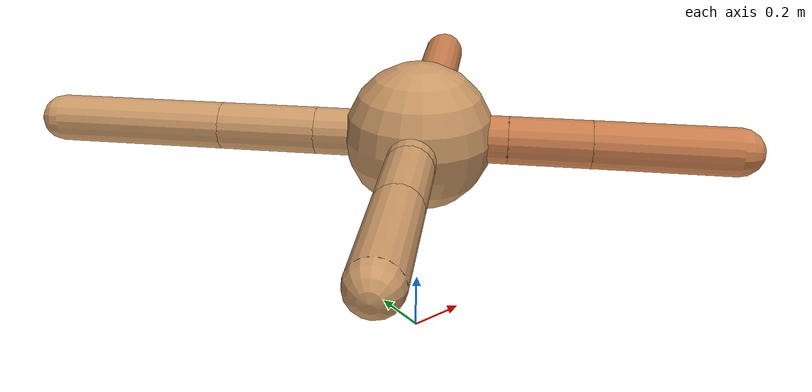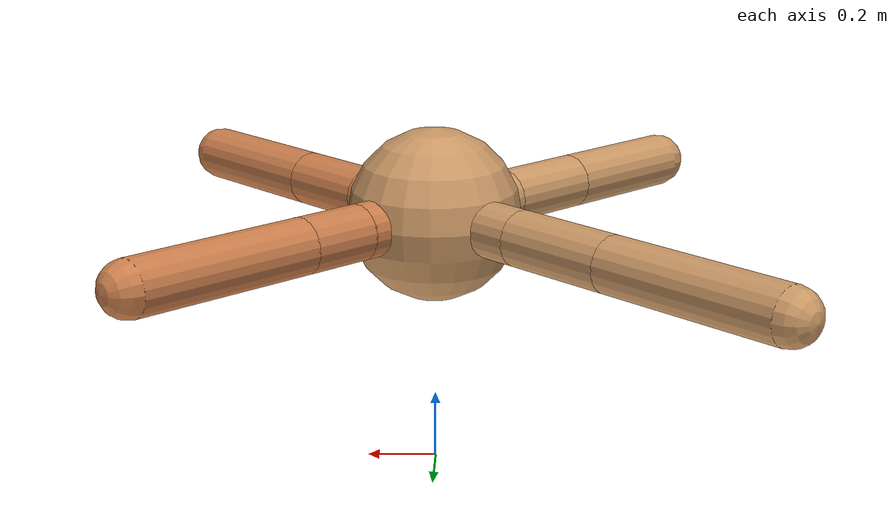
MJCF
<mujoco model="ant">
  <compiler angle="degree" coordinate="local" inertiafromgeom="true" />
  <option integrator="RK4" timestep="0.01" />
  <custom>
    <numeric data="0.0 0.0 0.55 1.0 0.0 0.0 0.0 0.0 1.0 0.0 -1.0 0.0 -1.0 0.0 1.0" name="init_qpos" />
  </custom>
  <default>
    <joint armature="1" damping="1" limited="true" />
    <geom conaffinity="0" condim="3" density="5.0" friction="1.5 0.1 0.1" margin="0.01" rgba="0.8 0.6 0.4 1" />
  </default>
  <worldbody>
    <body name="torso" pos="0 0 0.75">
      <geom name="torso_geom" pos="0 0 0" size="0.25" type="sphere" />

      <body name="front_left_leg" pos="0 0 0">
        <geom fromto="0.0 0.0 0.0 0.2000031320729979 0.2000031320729979 0.0" name="aux_1_geom" size="0.08" type="capsule" rgba=".8 .5 .3 1" />
        <body name="aux_1" pos="0.2000031320729979 0.2000031320729979 0.0">
          <joint axis="0 0 1" name="hip_1" pos="0.0 0.0 0.0" range="-40 40" type="hinge" />
          <geom fromto="0.0 0.0 0.0 0.14027428772741768 0.14027428772741768 0.0" name="left_leg_geom" size="0.08" type="capsule" rgba=".8 .5 .3 1" />
          <body pos="0.14027428772741768 0.14027428772741768 0.0" name="front_left_foot">
            <joint axis="-1 1 0" name="ankle_1" pos="0.0 0.0 0.0" range="30 100" type="hinge" />
            <geom fromto="0.0 0.0 0.0 0.39047605208901165 0.39047605208901165 0.0" name="left_ankle_geom" size="0.08" type="capsule" rgba=".8 .5 .3 1" />
          </body>
        </body>
      </body>
      <body name="front_right_leg" pos="0 0 0">
        <geom fromto="0.0 0.0 0.0 -0.2463827964530128 0.2463827964530128 0.0" name="aux_2_geom" size="0.08" type="capsule" />
        <body name="aux_2" pos="-0.2463827964530128 0.2463827964530128 0.0">
          <joint axis="0 0 1" name="hip_2" pos="0.0 0.0 0.0" range="-40 40" type="hinge" />
          <geom fromto="0.0 0.0 0.0 -0.2343077091583138 0.2343077091583138 0.0" name="right_leg_geom" size="0.08" type="capsule" />
          <body pos="-0.2343077091583138 0.2343077091583138 0.0" name="front_right_foot">
            <joint axis="1 1 0" name="ankle_2" pos="0.0 0.0 0.0" range="-100 -30" type="hinge" />
            <geom fromto="0.0 0.0 0.0 -0.40711293747072413 0.40711293747072413 0.0" name="right_ankle_geom" size="0.08" type="capsule" />
          </body>
        </body>
      </body>
      <body name="left_back_leg" pos="0 0 0">
        <geom fromto="0.0 0.0 0.0 -0.20321824123120713 -0.20321824123120713 0.0" name="aux_3_geom" size="0.08" type="capsule" />
        <body name="aux_3" pos="-0.20321824123120713 -0.20321824123120713 0.0">
          <joint axis="0 0 1" name="hip_3" pos="0.0 0.0 0.0" range="-40 40" type="hinge" />
          <geom fromto="0.0 0.0 0.0 -0.19467337213955865 -0.19467337213955865 0.0" name="back_leg_geom" size="0.08" type="capsule" />
          <body pos="-0.19467337213955865 -0.19467337213955865 0.0" name="left_back_foot">
            <joint axis="-1 1 0" name="ankle_3" pos="0.0 0.0 0.0" range="-100 -30" type="hinge" />
            <geom fromto="0.0 0.0 0.0 -0.28789857119511525 -0.28789857119511525 0.0" name="third_ankle_geom" size="0.08" type="capsule" />
          </body>
        </body>
      </body>
      <body name="right_back_leg" pos="0 0 0">
        <geom fromto="0.0 0.0 0.0 0.2096212901807656 -0.2096212901807656 0.0" name="aux_4_geom" size="0.08" type="capsule" rgba=".8 .5 .3 1" />
        <body name="aux_4" pos="0.2096212901807656 -0.2096212901807656 0.0">
          <joint axis="0 0 1" name="hip_4" pos="0.0 0.0 0.0" range="-40 40" type="hinge" />
          <geom fromto="0.0 0.0 0.0 0.19124167591569866 -0.19124167591569866 0.0" name="rightback_leg_geom" size="0.08" type="capsule" rgba=".8 .5 .3 1" />
          <body pos="0.19124167591569866 -0.19124167591569866 0.0" name="right_back_foot">
            <joint axis="1 1 0" name="ankle_4" pos="0.0 0.0 0.0" range="30 100" type="hinge" />
            <geom fromto="0.0 0.0 0.0 0.3284645606752989 -0.3284645606752989 0.0" name="fourth_ankle_geom" size="0.08" type="capsule" rgba=".8 .5 .3 1" />
          </body>
        </body>
      </body>
    </body>
  </worldbody>
  <actuator>
    <motor ctrllimited="true" ctrlrange="-1.0 1.0" joint="hip_4" gear="150" />
    <motor ctrllimited="true" ctrlrange="-1.0 1.0" joint="ankle_4" gear="150" />
    <motor ctrllimited="true" ctrlrange="-1.0 1.0" joint="hip_1" gear="150" />
    <motor ctrllimited="true" ctrlrange="-1.0 1.0" joint="ankle_1" gear="150" />
    <motor ctrllimited="true" ctrlrange="-1.0 1.0" joint="hip_2" gear="150" />
    <motor ctrllimited="true" ctrlrange="-1.0 1.0" joint="ankle_2" gear="150" />
    <motor ctrllimited="true" ctrlrange="-1.0 1.0" joint="hip_3" gear="150" />
    <motor ctrllimited="true" ctrlrange="-1.0 1.0" joint="ankle_3" gear="150" />
  </actuator>
</mujoco>
